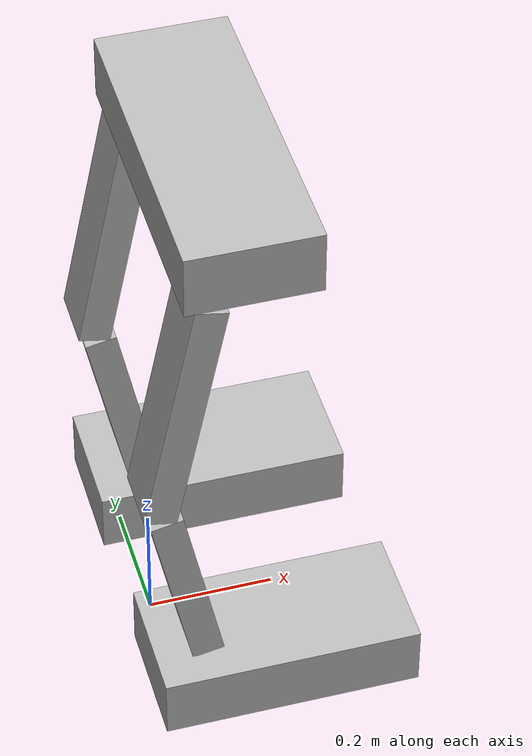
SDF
<?xml version='1.0'?>
<sdf version='1.5'>
  <model name='humanoid_robot'>
    <include>
      <uri>model://body</uri>
      <pose>.1 0 .9 0 0 0</pose>
    </include>

    <include>
      <uri>model://leg</uri>
      <pose>0 .2 0 0 0 0</pose>
    </include>

    <include>
      <uri>model://leg2</uri>
      <pose>0 -0.2 0 0 0 0</pose>
    </include>

    <joint name='body_left_leg' type='revolute'>
      <pose>0 0 .2 0 0 0</pose>
      <parent>body::body</parent>
      <child>leg::upper_leg</child>
      <axis>
        <limit>
          <lower>-0.1</lower>
          <upper>.1</upper>
        </limit>
        <xyz>0 1 0</xyz>
      </axis>
    </joint>

    <joint name='body_right_leg' type='revolute'>
      <pose>0 0 .2 0 0 0</pose>
      <parent>body::body</parent>
      <child>leg2::upper_leg</child>
      <axis>
        <limit>
          <lower>-0.1</lower>
          <upper>.1</upper>
        </limit>
        <xyz>0 1 0</xyz>
      </axis>
    </joint>
  </model>
</sdf>

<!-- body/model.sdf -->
<sdf version='1.4'>
  <model name='body'>
    <link name='body'>
      <pose>0 0 0 0 0 0</pose>
      <inertial>
        <mass>1.0</mass>
        <pose>0 0 1 0 0 0</pose>
        <inertia>
          <ixx>5</ixx>
          <iyy>1</iyy>
          <izz>1</izz>
        </inertia>
      </inertial>
      <collision name='collision'>
        <geometry>
          <box>
            <size>.2 .5 .1</size>
          </box>
        </geometry>
      </collision>
      <visual name='visual'>
        <geometry>
          <box>
            <size>.2 .5 .1</size>
          </box>
        </geometry>
      </visual>
    </link>
  </model>
</sdf>

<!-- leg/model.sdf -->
<sdf version='1.4'>
  <model name='leg'>
    <link name='upper_leg'>
      <pose>0 0 .65 0 .2 0</pose>
      <inertial>
        <pose>0 0 .5 0 .2 0</pose>
        <inertia>
          <ixx>.1</ixx>
          <ixy>0</ixy>
          <ixz>1</ixz>
          <iyy>.1</iyy>
          <iyz>0</iyz>
          <izz>.1</izz>
        </inertia>
        <mass>1.0</mass>
      </inertial>
      <collision name='collision'>
        <geometry>
          <box>
            <size>.05 .1 .4</size>
          </box>
        </geometry>
      </collision>
      <visual name='visual'>
        <geometry>
          <box>
            <size>.05 .1 .4</size>
          </box>
        </geometry>
        <material>
          <script>Gazebo/Purple</script>
        </material>
      </visual>
    </link>

    <link name='lower_leg'>
      <pose>0 0 .3 0 -0.2 0</pose>
      <inertial>
        <pose>0 0 .2 0 -0.2 0</pose>
        <inertia>
          <ixx>.1</ixx>
          <ixy>0</ixy>
          <ixz>1</ixz>
          <iyy>.1</iyy>
          <iyz>0</iyz>
          <izz>.1</izz>
        </inertia>
        <mass>1.0</mass>
      </inertial>
      <collision name='collision'>
        <geometry>
          <box>
            <size>.05 .1 .3</size>
          </box>
        </geometry>
      </collision>
      <visual name='visual'>
        <geometry>
          <box>
            <size>.05 .1 .3</size>
          </box>
        </geometry>
        <material>
          <script>Gazebo/Blue</script>
        </material>
      </visual>
    </link>

    <link name='foot'>
      <pose>.15 0 .1 0 0 0</pose>
      <inertial>
        <pose>.3 0 .1 0 0 0</pose>
        <inertia>
          <ixx>.03</ixx>
          <ixy>.05</ixy>
          <ixz>1</ixz>
          <iyy>.01</iyy>
          <iyz>0</iyz>
          <izz>.01</izz>
        </inertia>
        <mass>20.0</mass>
      </inertial>
      <collision name='collision'>
        <geometry>
          <box>
            <size>.4 .2 .1</size>
          </box>
        </geometry>
      </collision>
      <visual name='visual'>
        <geometry>
          <box>
            <size>.4 .2 .1</size>
          </box>
        </geometry>
        <material>
          <script>Gazebo/Yellow</script>
        </material>
      </visual>
    </link>

    <static>false</static>

    <joint name='upper_leg_lower_leg' type='revolute'>
      <pose>0 0 .16 0 0 0</pose>
      <parent>upper_leg</parent>
      <child>lower_leg</child>
      <axis>
        <limit>
          <lower>0.1</lower>
          <upper>0.3</upper>
        </limit>
        <xyz>0 1 0</xyz>
      </axis>
    </joint>
    <joint name='lower_leg_foot' type='revolute'>
      <pose>-0.1 0 .05 0 0 0</pose>
      <parent>lower_leg</parent>
      <child>foot</child>
      <axis>
        <limit>
          <lower>0.1</lower>
          <upper>0.3</upper>
        </limit>
        <xyz>0 1 0</xyz>
      </axis>
    </joint>
  </model>
</sdf>

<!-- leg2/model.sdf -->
<sdf version='1.4'>
  <model name='leg2'>
    <link name='upper_leg'>
      <pose>0 0 .65 0 .2 0</pose>
      <inertial>
        <pose>0 0 .5 0 .2 0</pose>
        <inertia>
          <ixx>.1</ixx>
          <ixy>0</ixy>
          <ixz>0</ixz>
          <iyy>.1</iyy>
          <iyz>0</iyz>
          <izz>.1</izz>
        </inertia>
        <mass>1.0</mass>
      </inertial>
      <collision name='collision'>
        <geometry>
          <box>
            <size>.05 .1 .4</size>
          </box>
        </geometry>
      </collision>
      <visual name='visual'>
        <geometry>
          <box>
            <size>.05 .1 .4</size>
          </box>
        </geometry>
        <material>
          <script>Gazebo/Purple</script>
        </material>
      </visual>
    </link>

    <link name='lower_leg'>
      <pose>0 0 .3 0 -0.2 0</pose>
      <inertial>
        <pose>0 0 .2 0 -0.2 0</pose>
        <inertia>
          <ixx>.1</ixx>
          <ixy>0</ixy>
          <ixz>0</ixz>
          <iyy>.1</iyy>
          <iyz>0</iyz>
          <izz>.1</izz>
        </inertia>
        <mass>1.0</mass>
      </inertial>
      <collision name='collision'>
        <geometry>
          <box>
            <size>.05 .1 .3</size>
          </box>
        </geometry>
      </collision>
      <visual name='visual'>
        <geometry>
          <box>
            <size>.05 .1 .3</size>
          </box>
        </geometry>
        <material>
          <script>Gazebo/Blue</script>
        </material>
      </visual>
    </link>

    <link name='foot'>
      <pose>.15 0 .1 0 0 0</pose>
      <inertial>
        <pose>.3 0 .1 0 0 0</pose>
        <inertia>
          <ixx>.3</ixx>
          <ixy>0</ixy>
          <ixz>0</ixz>
          <iyy>.3</iyy>
          <iyz>0</iyz>
          <izz>.3</izz>
        </inertia>
        <mass>20.0</mass>
      </inertial>
      <collision name='collision'>
        <geometry>
          <box>
            <size>.4 .2 .1</size>
          </box>
        </geometry>
      </collision>
      <visual name='visual'>
        <geometry>
          <box>
            <size>.4 .2 .1</size>
          </box>
        </geometry>
        <material>
          <script>Gazebo/Yellow</script>
        </material>
      </visual>
    </link>

    <static>false</static>

    <joint name='upper_leg_lower_leg' type='revolute'>
      <pose>0 0 .16 0 0 0</pose>
      <parent>upper_leg</parent>
      <child>lower_leg</child>
      <axis>
        <limit>
          <lower>0</lower>
          <upper>.5</upper>
        </limit>
        <xyz>0 1 0</xyz>
      </axis>
    </joint>
    <joint name='lower_leg_foot' type='revolute'>
      <pose>-0.1 0 .05 0 0 0</pose>
      <parent>lower_leg</parent>
      <child>foot</child>
      <axis>
        <limit>
          <lower>0</lower>
          <upper>.5</upper>
        </limit>
        <xyz>0 1 0</xyz>
      </axis>
    </joint>
  </model>
</sdf>
